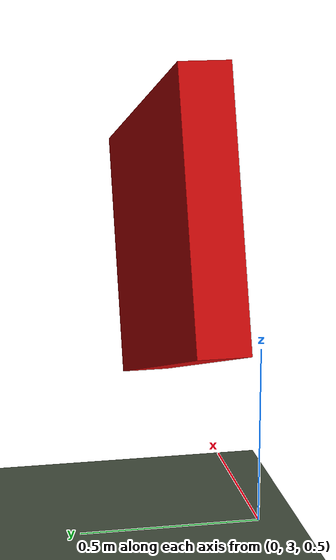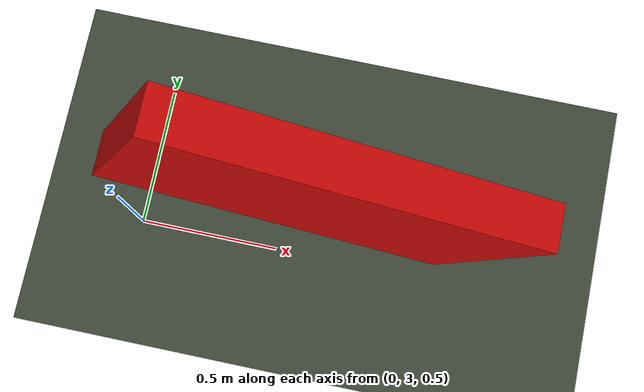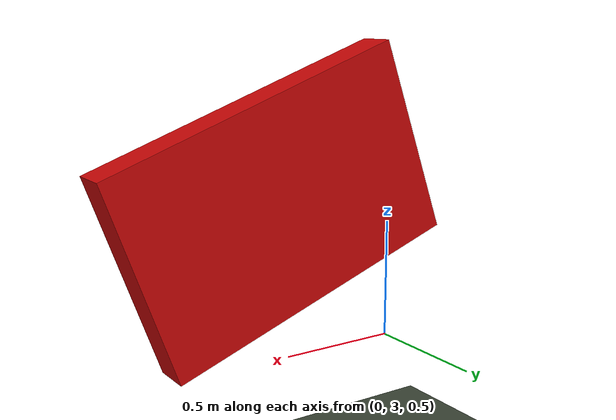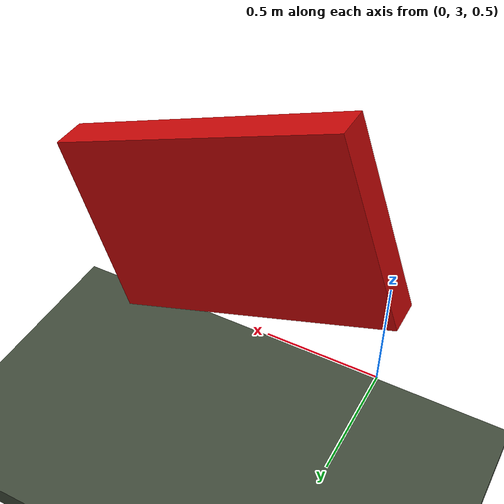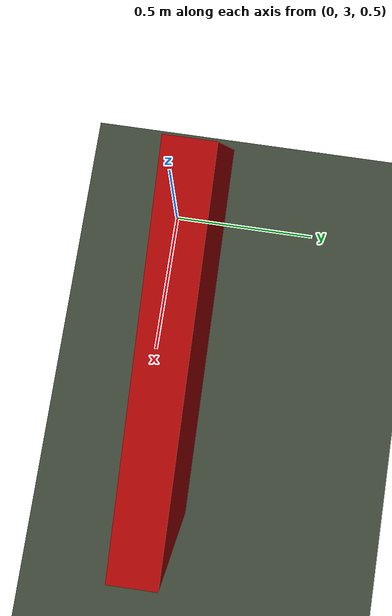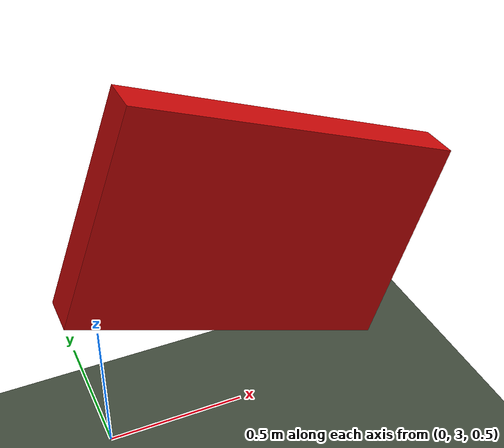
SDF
<sdf version="1.6">
 <world name="evrenos_teknofest_2026">
  <include><uri>model://sun</uri></include>
  <model name="main_course">
   <static>true</static>
   <link name="arena_floor">
    <pose>0.000000 2.500000 -0.080000 0.000000 0.000000 0.000000</pose>
    <collision name="arena_floor_collision">
     <geometry><box><size>87.500000 43.750000 0.100000</size></box></geometry>
    </collision>
    <visual name="arena_floor_visual">
     <geometry><box><size>87.500000 43.750000 0.100000</size></box></geometry>
     <material><ambient>0.24 0.28 0.22 1</ambient><diffuse>0.24 0.28 0.22 1</diffuse></material>
    </visual>
   </link>
   <link name="top_bar_-1_10">
    <pose>0.625000 3.125000 1.174700 0.000000 0.349605 0.000000</pose>
    <collision name="top_bar_-1_10_collision">
     <geometry><box><size>1.247009 0.150000 0.800000</size></box></geometry>
    </collision>
    <visual name="top_bar_-1_10_visual">
     <geometry><box><size>1.247009 0.150000 0.800000</size></box></geometry>
     <material><ambient>0.8 0.03 0.03 1</ambient><diffuse>0.8 0.03 0.03 1</diffuse></material>
    </visual>
   </link>
  </model>
 </world>
</sdf>
